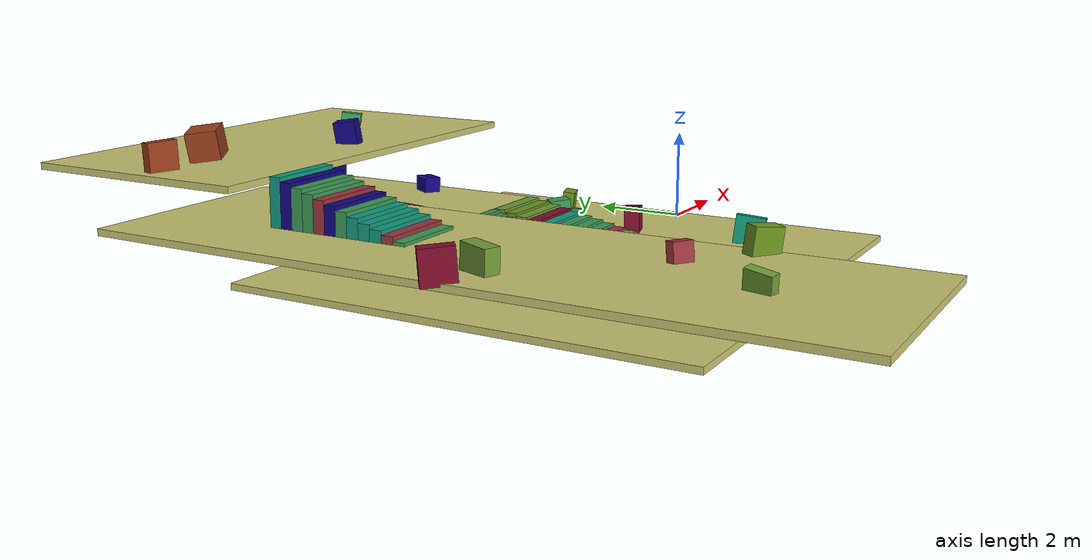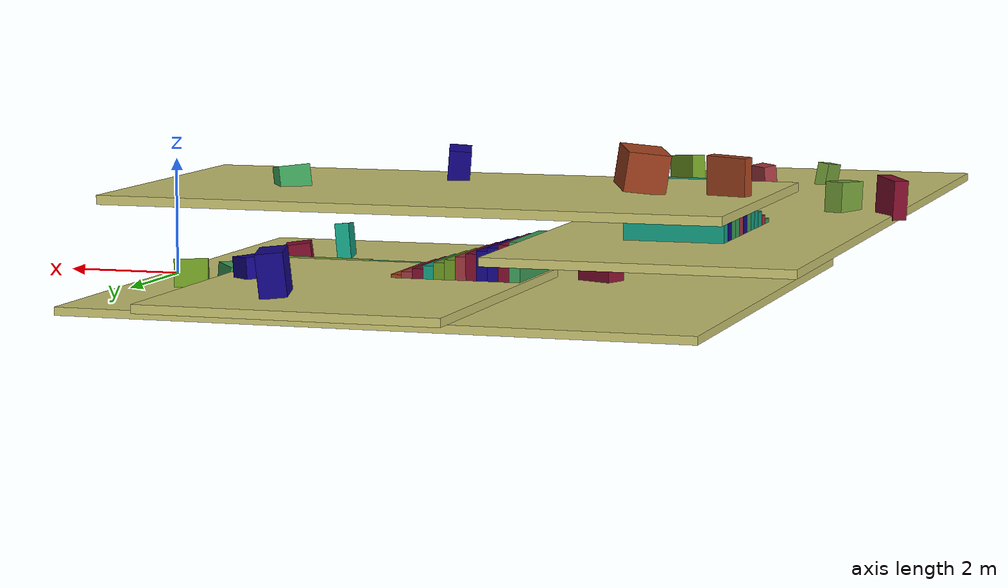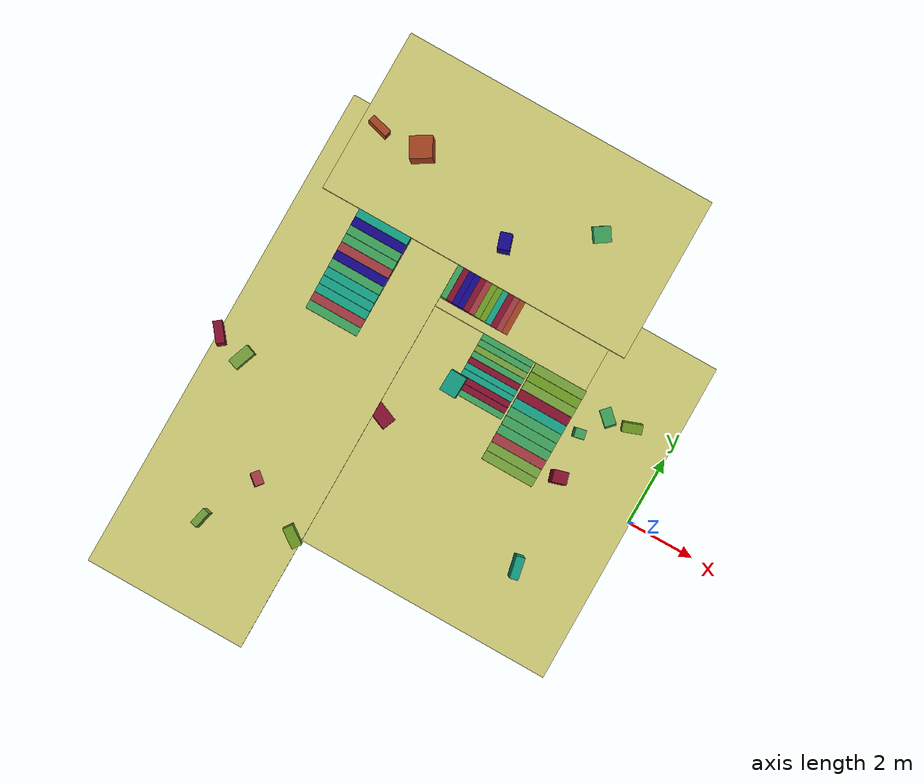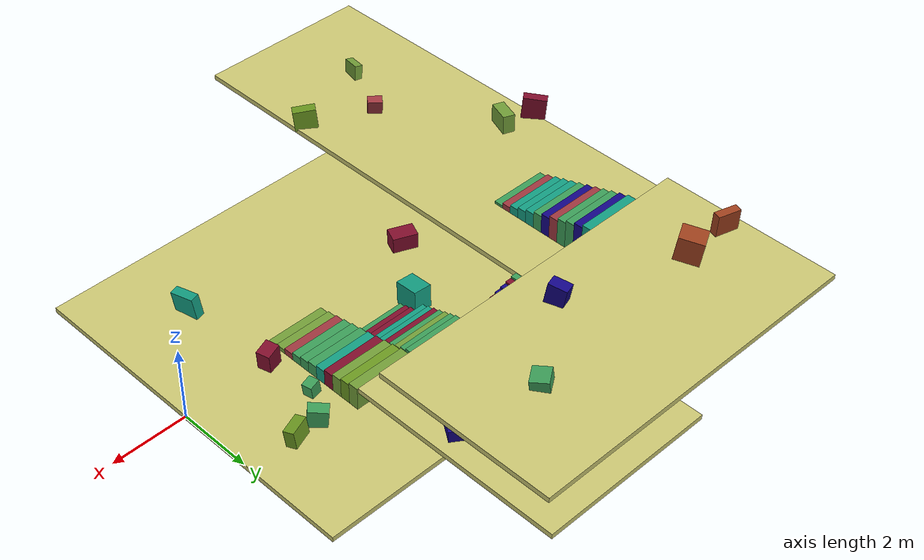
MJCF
<?xml version='1.0' encoding='utf-8'?>
<mujoco model="floors">
  <compiler angle="radian" autolimits="true" />
  <option gravity="0 0 -9.81" />
  <worldbody>
    <light name="key" pos="18 -12 28" dir="-0.45 0.3 -1" directional="true" diffuse="0.95 0.92 0.88" specular="0.2 0.2 0.2" castshadow="true" />
    <light name="fill" pos="-20 16 18" dir="0.55 -0.35 -1" directional="true" diffuse="0.45 0.5 0.6" specular="0.05 0.05 0.05" castshadow="false" intensity="80.8" />
    <light name="rim" pos="0 24 12" dir="0 -1 -0.35" directional="true" diffuse="0.28 0.3 0.34" specular="0.03 0.03 0.03" castshadow="false" intensity="80.8" />
    <geom name="Floor_001_001" type="box" pos="-5.24413919 1.6248012e-07 1.01550075e-08" quat="1 0 0 0" size="5.27315547 4.88068702 0.0681491077" rgba="0.800007463 0.783353686 0.451678276 1" />
    <geom name="Floor_001_002" type="box" pos="-5.9357686 2.86484337 0.284178615" quat="0.715183735 0.651365757 0.21691376 0.131085277" size="0.322500612 0.200877296 0.108130456" rgba="0.234806538 0.623373747 0.34515056 1" />
    <geom name="Floor_001_003" type="box" pos="-6.09798574 0.935682058 0.400731593" quat="0.517895639 -0.497705758 -0.523242056 0.458574772" size="0.31932986 0.310097047 0.246831029" rgba="0.0725907683 0.623321593 0.510010302 1" />
    <geom name="Floor_001_004" type="box" pos="-3.65949678 4.18221617 0.187719703" quat="0.0498071387 -0.868952274 -0.491238534 0.0335552134" size="0.253121072 0.202582467 0.171693781" rgba="0.505277038 0.0545665249 0.173904255 1" />
    <geom name="Floor_001_005" type="box" pos="-7.38889217 -0.801689684 0.247030139" quat="0.701552451 0.684699178 -0.137132227 -0.142147601" size="0.325696723 0.259041485 0.208907059" rgba="0.505277038 0.0545665249 0.173904255 1" />
    <geom name="Floor_001_006" type="box" pos="-1.23759604 2.30538344 0.345464706" quat="0.651993632 0.738462985 0.135971248 0.105302021" size="0.280927144 0.231167112 0.136981426" rgba="0.423859417 0.601138115 0.12627995 1" />
    <geom name="Floor_001_007" type="box" pos="-2.12378526 -2.58962822 0.347635716" quat="0.55181849 0.543707728 -0.396509558 -0.492603868" size="0.324144015 0.314250318 0.124871474" rgba="0.0725907683 0.623321593 0.510010302 1" />
    <geom name="Floor_001_008" type="box" pos="-2.42425489 1.45514536 0.214508221" quat="0.582208097 -0.479003459 -0.513790131 -0.40940091" size="0.226987948 0.152846357 0.134736038" rgba="0.234806538 0.623373747 0.34515056 1" />
    <geom name="Floor_001_009" type="box" pos="-1.94005227 2.21659112 0.280651897" quat="0.656532824 -0.655747056 0.223743439 -0.298159987" size="0.245388821 0.224101166 0.164107607" rgba="0.234806538 0.623373747 0.34515056 1" />
    <geom name="Floor_001_010" type="box" pos="-2.31979465 0.115532279 0.320927411" quat="0.576361656 -0.46918276 -0.550032437 -0.380971342" size="0.31480956 0.213481243 0.176715628" rgba="0.505277038 0.0545665249 0.173904255 1" />
    <geom name="Floor_002_001" type="box" pos="-5.24413919 5.43388033 0.62551111" quat="0 0.707106829 0.707106829 0" size="2.89633654 2.3886257 0.0681491112" rgba="0.800007463 0.783353686 0.451678276 1" />
    <geom name="Floor_002_002" type="box" pos="-4.56253099 6.97613859 1.06396449" quat="0.0566424429 -0.732350171 -0.111020185 -0.669424772" size="0.339471594 0.30540487 0.210845111" rgba="0.0762999579 0.0191840585 0.531663537 1" />
    <geom name="Floor_002_003" type="box" pos="-3.43266034 4.95484829 0.818395078" quat="0.614636421 0.632666409 0.351755172 0.313406438" size="0.267827582 0.214931757 0.185821647" rgba="0.0762999579 0.0191840585 0.531663537 1" />
    <geom name="Floor_003_001" type="box" pos="-9.97262669 -0.866540253 1.26455092" quat="0 0.707106829 0.707106829 0" size="7.30361716 2.38862586 0.0681491112" rgba="0.800007463 0.783353686 0.451678276 1" />
    <geom name="Floor_003_002" type="box" pos="-10.0848675 3.30184245 1.62158442" quat="0.183017299 -0.711786687 -0.140590325 -0.663399398" size="0.339043533 0.257887196 0.176036684" rgba="0.423859417 0.601138115 0.12627995 1" />
    <geom name="Floor_003_003" type="box" pos="-11.4322777 -1.32191849 1.5315522" quat="0.583930969 -0.5755409 -0.421789378 0.38713178" size="0.324799782 0.289615564 0.161845584" rgba="0.45167309 0.623394787 0.221228525 1" />
    <geom name="Floor_003_004" type="box" pos="-12.2902718 -1.05758643 1.6024698" quat="0.256362408 0.681610107 0.208713859 -0.652782142" size="0.326076018 0.311719571 0.126524278" rgba="0.505277038 0.0545665249 0.173904255 1" />
    <geom name="Floor_003_005" type="box" pos="-9.45721436 -3.98456144 1.60438883" quat="0.706398547 0.621934831 -0.23547186 -0.24238652" size="0.190594048 0.184327882 0.131994618" rgba="0.623373747 0.216404259 0.245138064 1" />
    <geom name="Floor_003_006" type="box" pos="-10.2433748 -5.64463139 1.47472322" quat="0.539541781 -0.564463854 -0.499347061 0.375403672" size="0.261261001 0.216186405 0.104436989" rgba="0.45167309 0.623394787 0.221228525 1" />
    <geom name="Floor_003_007" type="box" pos="-7.85277367 -4.85616493 1.56678569" quat="0.6446141 0.700601578 -0.188330412 -0.241167679" size="0.300657045 0.275593782 0.149212703" rgba="0.423859417 0.601138115 0.12627995 1" />
    <geom name="Floor_004_001" type="box" pos="-7.10472965 6.13112545 2.23626685" quat="1 0 0 0" size="4.66935238 2.41541646 0.0681490366" rgba="0.800007463 0.783353686 0.451678276 1" />
    <geom name="Floor_004_002" type="box" pos="-11.2185211 5.86329031 2.56365156" quat="0.686270952 -0.7157951 0.0817657858 -0.0999198854" size="0.313456366 0.312994513 0.104934476" rgba="0.623321593 0.252233952 0.114999712 1" />
    <geom name="Floor_004_003" type="box" pos="-9.93017578 5.89826822 2.6566267" quat="0.050631579 0.964162469 0.249170899 0.0757697299" size="0.319205928 0.315613516 0.296442739" rgba="0.623321593 0.252233952 0.114999712 1" />
    <geom name="Floor_004_004" type="box" pos="-6.74836302 4.80564737 2.49905705" quat="0.154980466 0.72949791 0.0641789734 -0.663095057" size="0.28941243 0.238247711 0.169995366" rgba="0.0762999579 0.0191840585 0.531663537 1" />
    <geom name="Floor_004_005" type="box" pos="-4.61318398 6.31012392 2.41218376" quat="0.0445444994 -0.954617977 -0.2895706 0.0535651632" size="0.23782555 0.223074165 0.184380383" rgba="0.234806538 0.623373747 0.34515056 1" />
    <geom name="Stairs_001_001" type="box" pos="-9.83114147 0.834686279 1.35996974" quat="1 0 0 0" size="0.796172571 0.125837481 0.0410223307" rgba="0.234806538 0.623373747 0.34515056 1" />
    <geom name="Stairs_001_002" type="box" pos="-9.83114147 1.08636129 1.40099216" quat="1 0 0 0" size="0.796172571 0.125837441 0.0820446614" rgba="0.623373747 0.216404259 0.245138064 1" />
    <geom name="Stairs_001_003" type="box" pos="-9.83114147 1.33803618 1.44201446" quat="1 0 0 0" size="0.796172571 0.125837522 0.123066992" rgba="0.0725907683 0.623321593 0.510010302 1" />
    <geom name="Stairs_001_004" type="box" pos="-9.83114147 1.58971119 1.48303676" quat="0.707106829 0.707106829 0 0" size="0.796172571 0.164089307 0.125837428" rgba="0.0725907683 0.623321593 0.510010302 1" />
    <geom name="Stairs_001_005" type="box" pos="-9.83114147 1.84138608 1.52405894" quat="0.707106829 0.707106829 0 0" size="0.796172571 0.205111552 0.125837591" rgba="0.0725907683 0.623321593 0.510010302 1" />
    <geom name="Stairs_001_006" type="box" pos="-9.83114147 2.09306121 1.56508136" quat="0.707106829 0.707106829 0 0" size="0.796172571 0.246133879 0.12583751" rgba="0.234806538 0.623373747 0.34515056 1" />
    <geom name="Stairs_001_007" type="box" pos="-9.83114147 2.34473634 1.60610366" quat="0.707106829 0.707106829 0 0" size="0.796172571 0.287156206 0.125837428" rgba="0.0762999579 0.0191840585 0.531663537 1" />
    <geom name="Stairs_001_008" type="box" pos="-9.83114147 2.59641147 1.64712608" quat="0.707106829 0.707106829 0 0" size="0.796172571 0.328178533 0.125837428" rgba="0.623373747 0.216404259 0.245138064 1" />
    <geom name="Stairs_001_009" type="box" pos="-9.83114147 2.84808636 1.68814826" quat="0.707106829 0.707106829 0 0" size="0.796172571 0.369200859 0.12583751" rgba="0.234806538 0.623373747 0.34515056 1" />
    <geom name="Stairs_001_010" type="box" pos="-9.83114147 3.09976101 1.7291708" quat="0.707106829 0.707106829 0 0" size="0.796172571 0.410223186 0.125837428" rgba="0.234806538 0.623373747 0.34515056 1" />
    <geom name="Stairs_001_011" type="box" pos="-9.83114147 3.35143638 1.77019298" quat="0.707106829 0.707106829 0 0" size="0.796172571 0.451245513 0.125837428" rgba="0.0762999579 0.0191840585 0.531663537 1" />
    <geom name="Stairs_001_012" type="box" pos="-9.83114147 3.60311103 1.8112154" quat="0.707106829 0.707106829 0 0" size="0.796172571 0.49226784 0.125837591" rgba="0.0725907683 0.623321593 0.510010302 1" />
    <geom name="Stairs_002_001" type="box" pos="-5.56923866 3.59865713 0.719005585" quat="0.707106829 0 0 0.707106709" size="0.796172734 0.0875147194 0.0261642176" rgba="0.623321593 0.252233952 0.114999712 1" />
    <geom name="Stairs_002_002" type="box" pos="-5.74426842 3.59865713 0.745169818" quat="0.707106829 0 0 0.707106709" size="0.796172734 0.0875147194 0.0523284352" rgba="0.623373747 0.216404259 0.245138064 1" />
    <geom name="Stairs_002_003" type="box" pos="-5.9192977 3.59865713 0.771334052" quat="0.707106829 0 0 0.707106709" size="0.796172734 0.0875147194 0.0784926529" rgba="0.505277038 0.0545665249 0.173904255 1" />
    <geom name="Stairs_002_004" type="box" pos="-6.09432697 3.59865737 0.797498226" quat="0.5 0.50000006 0.5 0.5" size="0.796172734 0.104656862 0.0875147135" rgba="0.0725907683 0.623321593 0.510010302 1" />
    <geom name="Stairs_002_005" type="box" pos="-6.26935673 3.59865737 0.82366246" quat="0.5 0.50000006 0.5 0.5" size="0.796172734 0.130821078 0.0875147418" rgba="0.423859417 0.601138115 0.12627995 1" />
    <geom name="Stairs_002_006" type="box" pos="-6.44438601 3.59865737 0.849826694" quat="0.5 0.50000006 0.5 0.5" size="0.796172734 0.156985293 0.0875147135" rgba="0.423859417 0.601138115 0.12627995 1" />
    <geom name="Stairs_002_007" type="box" pos="-6.61941528 3.59865737 0.875990868" quat="0.5 0.50000006 0.5 0.5" size="0.796172734 0.183149457 0.08751477" rgba="0.623373747 0.216404259 0.245138064 1" />
    <geom name="Stairs_002_008" type="box" pos="-6.79444504 3.59865737 0.902155101" quat="0.5 0.50000006 0.5 0.5" size="0.796172734 0.209313673 0.08751477" rgba="0.505277038 0.0545665249 0.173904255 1" />
    <geom name="Stairs_002_009" type="box" pos="-6.96947432 3.59865737 0.928319335" quat="0.5 0.50000006 0.5 0.5" size="0.796172734 0.235477888 0.08751477" rgba="0.0762999579 0.0191840585 0.531663537 1" />
    <geom name="Stairs_002_010" type="box" pos="-7.14450312 3.59865737 0.954483569" quat="0.5 0.50000006 0.5 0.5" size="0.796172734 0.261642104 0.08751477" rgba="0.0762999579 0.0191840585 0.531663537 1" />
    <geom name="Stairs_002_011" type="box" pos="-7.31953287 3.59865737 0.980647743" quat="0.5 0.50000006 0.5 0.5" size="0.796172734 0.287806319 0.08751477" rgba="0.505277038 0.0545665249 0.173904255 1" />
    <geom name="Stairs_002_012" type="box" pos="-7.49456263 3.59865737 1.00681198" quat="0.5 0.50000006 0.5 0.5" size="0.796172734 0.313970535 0.08751477" rgba="0.234806538 0.623373747 0.34515056 1" />
    <geom name="Stairs_003_001" type="box" pos="-5.2661376 0.82319051 0.0981775969" quat="1 0 0 0" size="0.796172571 0.0903489088 0.0309405081" rgba="0.234806538 0.623373747 0.34515056 1" />
    <geom name="Stairs_003_002" type="box" pos="-5.2661376 1.00388837 0.1291181" quat="1 0 0 0" size="0.796172571 0.0903489574 0.0618810225" rgba="0.505277038 0.0545665249 0.173904255 1" />
    <geom name="Stairs_003_003" type="box" pos="-5.2661376 1.18458605 0.160058618" quat="1 0 0 0" size="0.796172571 0.0903489088 0.0928215369" rgba="0.505277038 0.0545665249 0.173904255 1" />
    <geom name="Stairs_003_004" type="box" pos="-5.2661376 1.36528397 0.19099912" quat="0.707106829 0.707106829 0 0" size="0.796172571 0.12376204 0.0903489007" rgba="0.0725907683 0.623321593 0.510010302 1" />
    <geom name="Stairs_003_005" type="box" pos="-5.2661376 1.54598188 0.221939638" quat="0.707106829 0.707106829 0 0" size="0.796172571 0.154702547 0.0903489007" rgba="0.0725907683 0.623321593 0.510010302 1" />
    <geom name="Stairs_003_006" type="box" pos="-5.2661376 1.7266798 0.252880186" quat="0.707106829 0.707106829 0 0" size="0.796172571 0.185643066 0.0903489007" rgba="0.505277038 0.0545665249 0.173904255 1" />
    <geom name="Stairs_003_007" type="box" pos="-5.2661376 1.9073776 0.283820659" quat="0.707106829 0.707106829 0 0" size="0.796172571 0.21658356 0.0903489007" rgba="0.234806538 0.623373747 0.34515056 1" />
    <geom name="Stairs_003_008" type="box" pos="-5.2661376 2.08807564 0.314761192" quat="0.707106829 0.707106829 0 0" size="0.796172571 0.24752408 0.0903489979" rgba="0.45167309 0.623394787 0.221228525 1" />
    <geom name="Stairs_003_009" type="box" pos="-5.2661376 2.26877356 0.345701724" quat="0.707106829 0.707106829 0 0" size="0.796172571 0.278464599 0.0903488035" rgba="0.234806538 0.623373747 0.34515056 1" />
    <geom name="Stairs_003_010" type="box" pos="-5.2661376 2.44947124 0.376642197" quat="0.707106829 0.707106829 0 0" size="0.796172571 0.309405093 0.0903489979" rgba="0.234806538 0.623373747 0.34515056 1" />
    <geom name="Stairs_004_001" type="box" pos="-3.61671019 -0.337745041 0.0953648165" quat="1 0 0 0" size="0.796172571 0.1372773 0.0281277363" rgba="0.45167309 0.623394787 0.221228525 1" />
    <geom name="Stairs_004_002" type="box" pos="-3.61671019 -0.0631904304 0.123492546" quat="1 0 0 0" size="0.796172571 0.1372773 0.0562554727" rgba="0.45167309 0.623394787 0.221228525 1" />
    <geom name="Stairs_004_003" type="box" pos="-3.61671019 0.211364239 0.151620284" quat="1 0 0 0" size="0.796172571 0.137277321 0.0843832026" rgba="0.623373747 0.216404259 0.245138064 1" />
    <geom name="Stairs_004_004" type="box" pos="-3.61671019 0.48591873 0.179748043" quat="0.707106829 0.707106829 0 0" size="0.796172571 0.112510941 0.137277328" rgba="0.234806538 0.623373747 0.34515056 1" />
    <geom name="Stairs_004_005" type="box" pos="-3.61671019 0.76047343 0.207875744" quat="0.707106829 0.707106829 0 0" size="0.796172571 0.14063867 0.137277328" rgba="0.234806538 0.623373747 0.34515056 1" />
    <geom name="Stairs_004_006" type="box" pos="-3.61671019 1.03502798 0.236003488" quat="0.707106829 0.707106829 0 0" size="0.796172571 0.168766411 0.137277328" rgba="0.234806538 0.623373747 0.34515056 1" />
    <geom name="Stairs_004_007" type="box" pos="-3.61671019 1.30958259 0.264131218" quat="0.707106829 0.707106829 0 0" size="0.796172571 0.196894165 0.137277328" rgba="0.0725907683 0.623321593 0.510010302 1" />
    <geom name="Stairs_004_008" type="box" pos="-3.61671019 1.58413708 0.292258948" quat="0.707106829 0.707106829 0 0" size="0.796172571 0.225021882 0.137277328" rgba="0.505277038 0.0545665249 0.173904255 1" />
    <geom name="Stairs_004_009" type="box" pos="-3.61671019 1.85869181 0.320386678" quat="0.707106829 0.707106829 0 0" size="0.796172571 0.253149636 0.137277328" rgba="0.45167309 0.623394787 0.221228525 1" />
    <geom name="Stairs_004_010" type="box" pos="-3.61671019 2.13324618 0.348514408" quat="0.707106829 0.707106829 0 0" size="0.796172571 0.281277339 0.137277246" rgba="0.423859417 0.601138115 0.12627995 1" />
    <geom name="Stairs_004_011" type="box" pos="-3.61671019 2.40780091 0.376642138" quat="0.707106829 0.707106829 0 0" size="0.796172571 0.309405093 0.137277165" rgba="0.45167309 0.623394787 0.221228525 1" />
  </worldbody>
  <visual>
    <headlight ambient="0.32 0.32 0.32" diffuse="0.55 0.55 0.55" specular="0.08 0.08 0.08" />
    <rgba haze="0.12 0.14 0.16 1" />
  </visual>
</mujoco>
